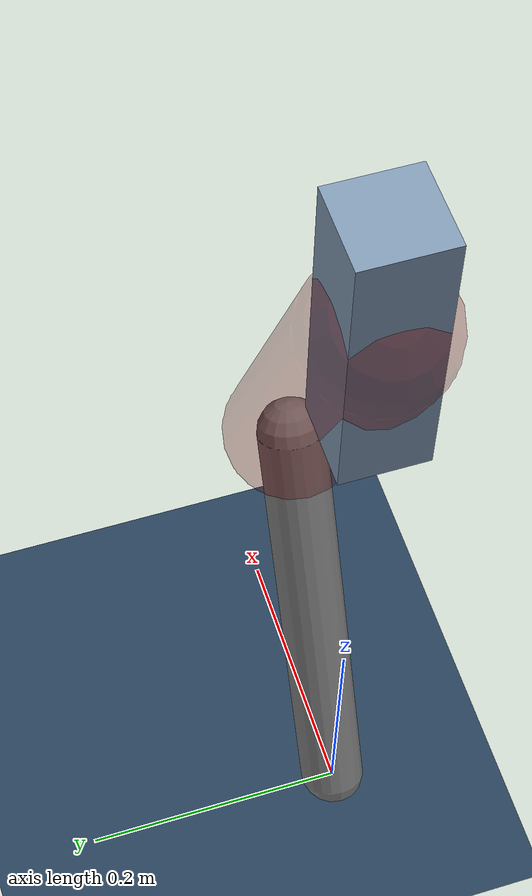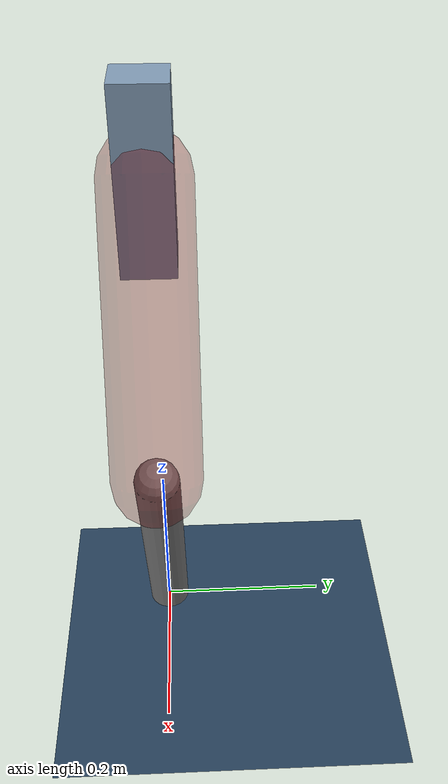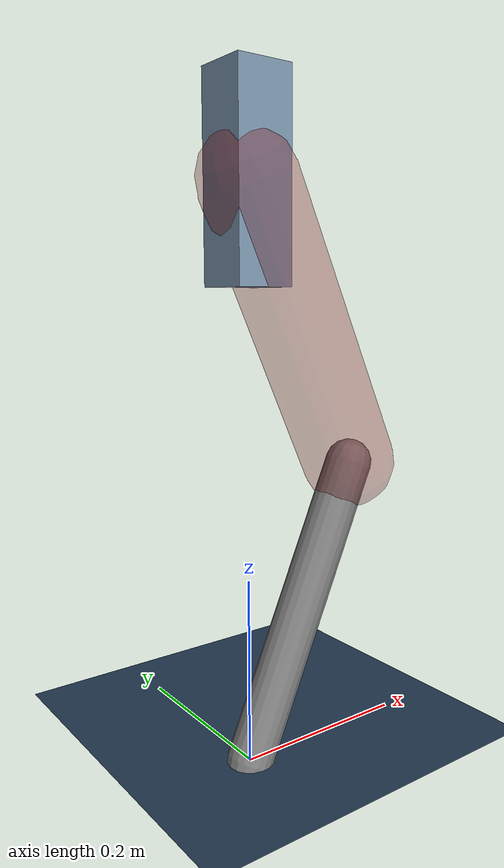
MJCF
<mujoco model="Hopper2D">
	<compiler inertiafromgeom="true" angle="radian" />
	<option timestep="0.001" integrator="implicit" cone="elliptic" solver="Newton" tolerance="1e-10" />

	<default>
		<geom contype="1" conaffinity="1" condim="3" friction="2 0.005 0.0001" solref="0.005 1" />
		<joint limited="true" damping="0.1" />
	</default>

	<asset>
		<texture name="skybox" type="skybox" builtin="gradient" rgb1=".4 .6 .8" rgb2="0 0 0" width="800" height="800" />
		<texture name="grid" type="2d" builtin="checker" rgb1=".1 .2 .3" rgb2=".2 .3 .4" width="300" height="300" mark="edge" markrgb=".2 .3 .4" />
		<material name="ground" texture="grid" texrepeat="1 1" texuniform="true" reflectance="0.1" />
		<material name="leg" rgba="0.5 0.6 0.7 1" />
	</asset>

	<worldbody>

		<geom name="floor" type="plane" size="5 5 0.25" material="ground" />

		<light directional="false" diffuse="0.8 0.8 0.8" specular="0.3 0.3 0.3" pos="0 0 2" dir="0 0 -1" />
		<light mode="targetbodycom" target="base" directional="false" diffuse="0.8 0.8 0.8" specular="0.3 0.3 0.3" pos="0 0 2" dir="0 0 -1" />

		<camera name="fixed" pos="0 -2 1" xyaxes="1 0 0 0 0 1" />
		<camera name="tracking" mode="trackcom" pos="0 -3 1" />

		<body name="root" pos="0 0 0.5965034135607193">
			<joint name="slide_x" type="slide" axis="1 0 0" range="-100 100" />
			<joint name="slide_z" type="slide" axis="0 0 1" range="0 10" />

			<body name="base" pos="0 0 0">
				<geom name="torso" type="box" size="0.03 0.03 0.1" mass="2.351" material="leg" />

				<body name="link1" pos="0 0 0" euler="0 1.1346216107427018 0">
					<joint type="hinge" axis="0 -1 0" pos="0 0 0" name="hinge1" limited="true" range="-3.14 3.14" stiffness="0" damping="0.1" />
					<geom name="thigh" type="capsule" fromto="0 0 0 0.31574584618880397 0 0" size="0.05" rgba="0.5 0 0 0.3" mass="1.0315883693286512" />

					<body name="link2" pos="0.31574584618880397 0 0" euler="0 0.8421571552775973 0">
						<joint type="hinge" axis="0 -1 0" pos="0 0 0" name="hinge2" limited="true" range="-3.14 3.14" stiffness="0" damping="0.1" />
						<geom name="shank" type="capsule" fromto="0 0 0 0.3377756077891153 0 0" size="0.025" mass="0.5140204862312923" />

					</body>
				</body>
			</body>
		</body>
	</worldbody>

	<actuator>
		<motor name="torque1" joint="hinge1" ctrlrange="-13.389852248308916 13.389852248308916" ctrllimited="true" gear="1" />
		<motor name="torque2" joint="hinge2" ctrlrange="-92.56311568777286 92.56311568777286" ctrllimited="true" gear="1" />
	</actuator>
</mujoco>
